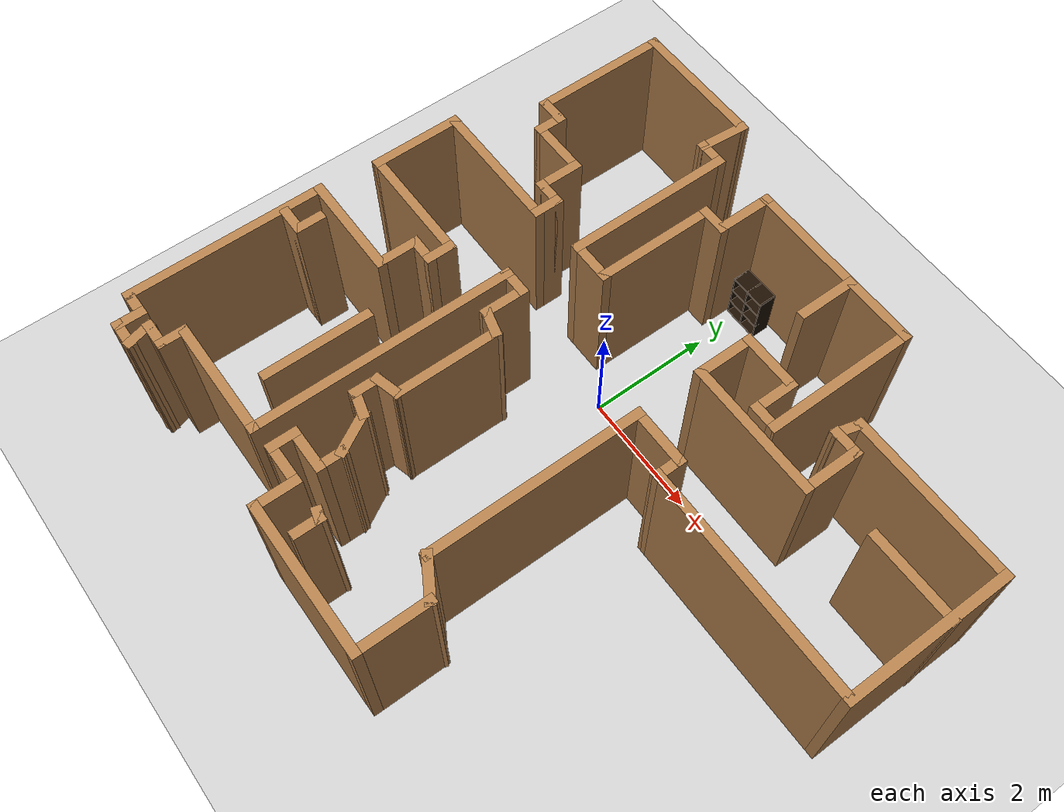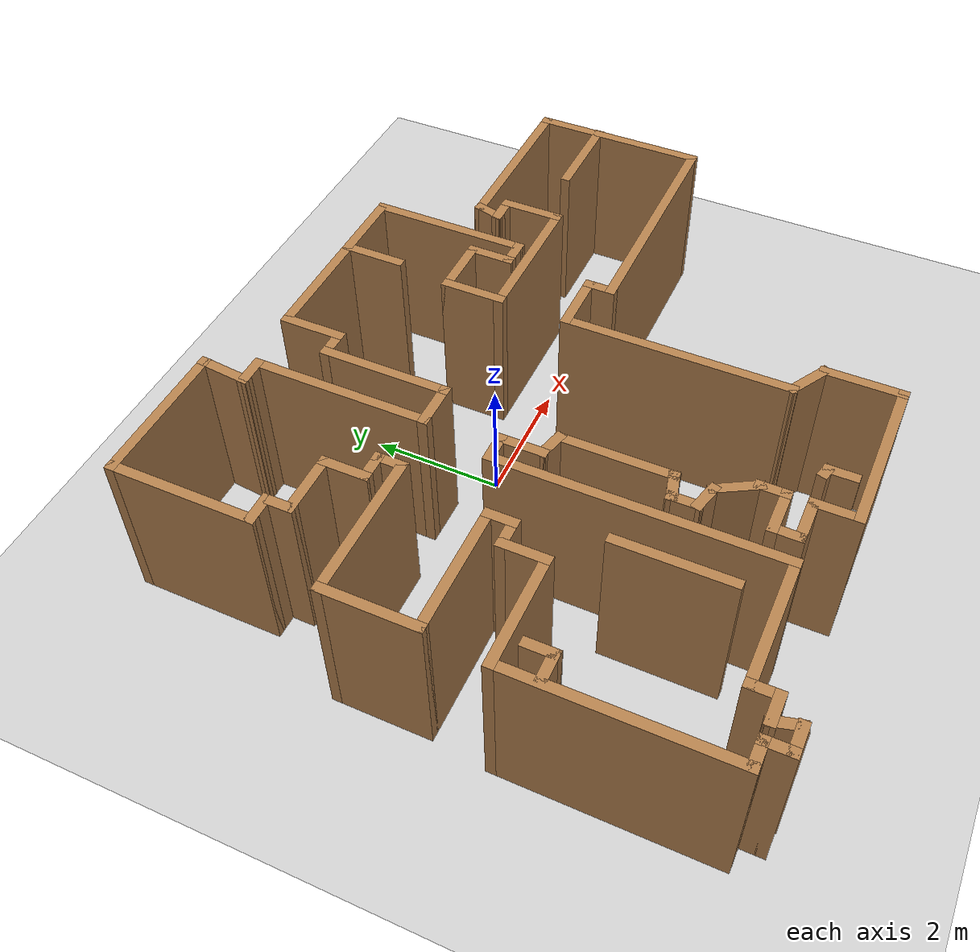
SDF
<sdf version="1.6">
 <world name="default">
  <light name="sun" type="directional">
   <pose>0 0 10 0 -0 0</pose>
   <diffuse>0.8 0.8 0.8 1</diffuse>
   <specular>0.2 0.2 0.2 1</specular>
   <attenuation>
    <range>1000</range>
    <constant>0.9</constant>
    <linear>0.01</linear>
    <quadratic>0.001</quadratic>
   </attenuation>
   <direction>-0.5 0.1 -0.9</direction>
  </light>
  <model name="ground_plane">
   <static>1</static>
   <link name="link">
    <collision name="collision">
     <geometry><plane><normal>0 0 1</normal><size>100 100</size></plane></geometry>
     <surface>
      <contact><collide_bitmask>65535</collide_bitmask></contact>
      <friction><ode><mu>100</mu><mu2>50</mu2></ode></friction>
     </surface>
    </collision>
    <visual name="visual">
     <cast_shadows>0</cast_shadows>
     <geometry><plane><normal>0 0 1</normal><size>100 100</size></plane></geometry>
     <material>
      <script><uri>file://media/materials/scripts/gazebo.material</uri><name>Gazebo/Grey</name></script>
     </material>
    </visual>
   </link>
  </model>
  <gravity>0 0 -9.8</gravity>
  <magnetic_field>6e-06 2.3e-05 -4.2e-05</magnetic_field>
  <atmosphere type="adiabatic"/>
  <physics name="default_physics" default="0" type="ode">
   <max_step_size>0.001</max_step_size>
   <real_time_factor>1</real_time_factor>
   <real_time_update_rate>1000</real_time_update_rate>
  </physics>
  <scene><ambient>0.4 0.4 0.4 1</ambient><background>0.7 0.7 0.7 1</background><shadows>1</shadows></scene>
  <audio><device>default</device></audio>
  <spherical_coordinates>
   <surface_model>EARTH_WGS84</surface_model>
   <latitude_deg>0</latitude_deg>
   <longitude_deg>0</longitude_deg>
   <elevation>0</elevation>
   <heading_deg>0</heading_deg>
  </spherical_coordinates>
  <model name="map_36">
   <pose>0.77291 -0.83712 0 0 -0 0</pose>
   <link name="Wall_0">
    <collision name="Wall_0_Collision">
     <geometry><box><size>2.25 0.15 2.5</size></box></geometry>
     <pose>0 0 1.25 0 -0 0</pose>
    </collision>
    <visual name="Wall_0_Visual">
     <pose>0 0 1.25 0 -0 0</pose>
     <geometry><box><size>2.25 0.15 2.5</size></box></geometry>
     <material>
      <script><uri>file://media/materials/scripts/gazebo.material</uri><name>Gazebo/Wood</name></script>
      <ambient>1 1 1 1</ambient>
     </material>
     <meta><layer>0</layer></meta>
    </visual>
    <pose>-3.34541 4.58019 0 0 -0 3.14159</pose>
   </link>
   <link name="Wall_1">
    <collision name="Wall_1_Collision">
     <geometry><box><size>2.25 0.15 2.5</size></box></geometry>
     <pose>0 0 1.25 0 -0 0</pose>
    </collision>
    <visual name="Wall_1_Visual">
     <pose>0 0 1.25 0 -0 0</pose>
     <geometry><box><size>2.25 0.15 2.5</size></box></geometry>
     <material>
      <script><uri>file://media/materials/scripts/gazebo.material</uri><name>Gazebo/Wood</name></script>
      <ambient>1 1 1 1</ambient>
     </material>
     <meta><layer>0</layer></meta>
    </visual>
    <pose>-4.39541 3.53019 0 0 -0 -1.5708</pose>
   </link>
   <link name="Wall_100">
    <collision name="Wall_100_Collision">
     <geometry><box><size>0.5 0.15 2.5</size></box></geometry>
     <pose>0 0 1.25 0 -0 0</pose>
    </collision>
    <visual name="Wall_100_Visual">
     <pose>0 0 1.25 0 -0 0</pose>
     <geometry><box><size>0.5 0.15 2.5</size></box></geometry>
     <material>
      <script><uri>file://media/materials/scripts/gazebo.material</uri><name>Gazebo/Wood</name></script>
      <ambient>1 1 1 1</ambient>
     </material>
     <meta><layer>0</layer></meta>
    </visual>
    <pose>-0.62594 -4.0171 0 0 -0 -1.5708</pose>
   </link>
   <link name="Wall_17">
    <collision name="Wall_17_Collision">
     <geometry><box><size>1 0.15 2.5</size></box></geometry>
     <pose>0 0 1.25 0 -0 0</pose>
    </collision>
    <visual name="Wall_17_Visual">
     <pose>0 0 1.25 0 -0 0</pose>
     <geometry><box><size>1 0.15 2.5</size></box></geometry>
     <material>
      <script><uri>file://media/materials/scripts/gazebo.material</uri><name>Gazebo/Wood</name></script>
      <ambient>1 1 1 1</ambient>
     </material>
     <meta><layer>0</layer></meta>
    </visual>
    <pose>-3.62041 2.13019 0 0 -0 0</pose>
   </link>
   <link name="Wall_18">
    <collision name="Wall_18_Collision">
     <geometry><box><size>0.75 0.15 2.5</size></box></geometry>
     <pose>0 0 1.25 0 -0 0</pose>
    </collision>
    <visual name="Wall_18_Visual">
     <pose>0 0 1.25 0 -0 0</pose>
     <geometry><box><size>0.75 0.15 2.5</size></box></geometry>
     <material>
      <script><uri>file://media/materials/scripts/gazebo.material</uri><name>Gazebo/Wood</name></script>
      <ambient>1 1 1 1</ambient>
     </material>
     <meta><layer>0</layer></meta>
    </visual>
    <pose>-3.19541 1.83019 0 0 -0 -1.5708</pose>
   </link>
   <link name="Wall_19">
    <collision name="Wall_19_Collision">
     <geometry><box><size>0.5 0.15 2.5</size></box></geometry>
     <pose>0 0 1.25 0 -0 0</pose>
    </collision>
    <visual name="Wall_19_Visual">
     <pose>0 0 1.25 0 -0 0</pose>
     <geometry><box><size>0.5 0.15 2.5</size></box></geometry>
     <material>
      <script><uri>file://media/materials/scripts/gazebo.material</uri><name>Gazebo/Wood</name></script>
      <ambient>1 1 1 1</ambient>
     </material>
     <meta><layer>0</layer></meta>
    </visual>
    <pose>-3.02041 1.53019 0 0 -0 0</pose>
   </link>
   <link name="Wall_2">
    <collision name="Wall_2_Collision">
     <geometry><box><size>0.5 0.15 2.5</size></box></geometry>
     <pose>0 0 1.25 0 -0 0</pose>
    </collision>
    <visual name="Wall_2_Visual">
     <pose>0 0 1.25 0 -0 0</pose>
     <geometry><box><size>0.5 0.15 2.5</size></box></geometry>
     <material>
      <script><uri>file://media/materials/scripts/gazebo.material</uri><name>Gazebo/Wood</name></script>
      <ambient>1 1 1 1</ambient>
     </material>
     <meta><layer>0</layer></meta>
    </visual>
    <pose>-4.22041 2.48019 0 0 -0 0</pose>
   </link>
   <link name="Wall_20">
    <collision name="Wall_20_Collision">
     <geometry><box><size>0.5 0.15 2.5</size></box></geometry>
     <pose>0 0 1.25 0 -0 0</pose>
    </collision>
    <visual name="Wall_20_Visual">
     <pose>0 0 1.25 0 -0 0</pose>
     <geometry><box><size>0.5 0.15 2.5</size></box></geometry>
     <material>
      <script><uri>file://media/materials/scripts/gazebo.material</uri><name>Gazebo/Wood</name></script>
      <ambient>1 1 1 1</ambient>
     </material>
     <meta><layer>0</layer></meta>
    </visual>
    <pose>-2.84541 1.35519 0 0 -0 -1.5708</pose>
   </link>
   <link name="Wall_21">
    <collision name="Wall_21_Collision">
     <geometry><box><size>2.25 0.15 2.5</size></box></geometry>
     <pose>0 0 1.25 0 -0 0</pose>
    </collision>
    <visual name="Wall_21_Visual">
     <pose>0 0 1.25 0 -0 0</pose>
     <geometry><box><size>2.25 0.15 2.5</size></box></geometry>
     <material>
      <script><uri>file://media/materials/scripts/gazebo.material</uri><name>Gazebo/Wood</name></script>
      <ambient>1 1 1 1</ambient>
     </material>
     <meta><layer>0</layer></meta>
    </visual>
    <pose>-3.89541 1.18019 0 0 -0 3.14159</pose>
   </link>
   <link name="Wall_22">
    <collision name="Wall_22_Collision">
     <geometry><box><size>1.5 0.15 2.5</size></box></geometry>
     <pose>0 0 1.25 0 -0 0</pose>
    </collision>
    <visual name="Wall_22_Visual">
     <pose>0 0 1.25 0 -0 0</pose>
     <geometry><box><size>1.5 0.15 2.5</size></box></geometry>
     <material>
      <script><uri>file://media/materials/scripts/gazebo.material</uri><name>Gazebo/Wood</name></script>
      <ambient>1 1 1 1</ambient>
     </material>
     <meta><layer>0</layer></meta>
    </visual>
    <pose>-4.94541 0.505193 0 0 -0 -1.5708</pose>
   </link>
   <link name="Wall_23">
    <collision name="Wall_23_Collision">
     <geometry><box><size>2 0.15 2.5</size></box></geometry>
     <pose>0 0 1.25 0 -0 0</pose>
    </collision>
    <visual name="Wall_23_Visual">
     <pose>0 0 1.25 0 -0 0</pose>
     <geometry><box><size>2 0.15 2.5</size></box></geometry>
     <material>
      <script><uri>file://media/materials/scripts/gazebo.material</uri><name>Gazebo/Wood</name></script>
      <ambient>1 1 1 1</ambient>
     </material>
     <meta><layer>0</layer></meta>
    </visual>
    <pose>-4.02041 -0.169807 0 0 -0 0</pose>
   </link>
   <link name="Wall_26">
    <collision name="Wall_26_Collision">
     <geometry><box><size>0.5 0.15 2.5</size></box></geometry>
     <pose>0 0 1.25 0 -0 0</pose>
    </collision>
    <visual name="Wall_26_Visual">
     <pose>0 0 1.25 0 -0 0</pose>
     <geometry><box><size>0.5 0.15 2.5</size></box></geometry>
     <material>
      <script><uri>file://media/materials/scripts/gazebo.material</uri><name>Gazebo/Wood</name></script>
      <ambient>1 1 1 1</ambient>
     </material>
     <meta><layer>0</layer></meta>
    </visual>
    <pose>-3.09541 -0.344807 0 0 -0 -1.5708</pose>
   </link>
   <link name="Wall_27">
    <collision name="Wall_27_Collision">
     <geometry><box><size>0.5 0.15 2.5</size></box></geometry>
     <pose>0 0 1.25 0 -0 0</pose>
    </collision>
    <visual name="Wall_27_Visual">
     <pose>0 0 1.25 0 -0 0</pose>
     <geometry><box><size>0.5 0.15 2.5</size></box></geometry>
     <material>
      <script><uri>file://media/materials/scripts/gazebo.material</uri><name>Gazebo/Wood</name></script>
      <ambient>1 1 1 1</ambient>
     </material>
     <meta><layer>0</layer></meta>
    </visual>
    <pose>-3.27041 -0.519807 0 0 -0 3.14159</pose>
   </link>
   <link name="Wall_28">
    <collision name="Wall_28_Collision">
     <geometry><box><size>0.75 0.15 2.5</size></box></geometry>
     <pose>0 0 1.25 0 -0 0</pose>
    </collision>
    <visual name="Wall_28_Visual">
     <pose>0 0 1.25 0 -0 0</pose>
     <geometry><box><size>0.75 0.15 2.5</size></box></geometry>
     <material>
      <script><uri>file://media/materials/scripts/gazebo.material</uri><name>Gazebo/Wood</name></script>
      <ambient>1 1 1 1</ambient>
     </material>
     <meta><layer>0</layer></meta>
    </visual>
    <pose>-3.44541 -0.819807 0 0 -0 -1.5708</pose>
   </link>
   <link name="Wall_29">
    <collision name="Wall_29_Collision">
     <geometry><box><size>1.75 0.15 2.5</size></box></geometry>
     <pose>0 0 1.25 0 -0 0</pose>
    </collision>
    <visual name="Wall_29_Visual">
     <pose>0 0 1.25 0 -0 0</pose>
     <geometry><box><size>1.75 0.15 2.5</size></box></geometry>
     <material>
      <script><uri>file://media/materials/scripts/gazebo.material</uri><name>Gazebo/Wood</name></script>
      <ambient>1 1 1 1</ambient>
     </material>
     <meta><layer>0</layer></meta>
    </visual>
    <pose>-4.24541 -1.11981 0 0 -0 3.14159</pose>
   </link>
   <link name="Wall_3">
    <collision name="Wall_3_Collision">
     <geometry><box><size>0.5 0.15 2.5</size></box></geometry>
     <pose>0 0 1.25 0 -0 0</pose>
    </collision>
    <visual name="Wall_3_Visual">
     <pose>0 0 1.25 0 -0 0</pose>
     <geometry><box><size>0.5 0.15 2.5</size></box></geometry>
     <material>
      <script><uri>file://media/materials/scripts/gazebo.material</uri><name>Gazebo/Wood</name></script>
      <ambient>1 1 1 1</ambient>
     </material>
     <meta><layer>0</layer></meta>
    </visual>
    <pose>-4.04541 2.30519 0 0 -0 -1.5708</pose>
   </link>
   <link name="Wall_30">
    <collision name="Wall_30_Collision">
     <geometry><box><size>3.25 0.15 2.5</size></box></geometry>
     <pose>0 0 1.25 0 -0 0</pose>
    </collision>
    <visual name="Wall_30_Visual">
     <pose>0 0 1.25 0 -0 0</pose>
     <geometry><box><size>3.25 0.15 2.5</size></box></geometry>
     <material>
      <script><uri>file://media/materials/scripts/gazebo.material</uri><name>Gazebo/Wood</name></script>
      <ambient>1 1 1 1</ambient>
     </material>
     <meta><layer>0</layer></meta>
    </visual>
    <pose>-5.04541 -2.66981 0 0 -0 -1.5708</pose>
   </link>
   <link name="Wall_31">
    <collision name="Wall_31_Collision">
     <geometry><box><size>0.5 0.15 2.5</size></box></geometry>
     <pose>0 0 1.25 0 -0 0</pose>
    </collision>
    <visual name="Wall_31_Visual">
     <pose>0 0 1.25 0 -0 0</pose>
     <geometry><box><size>0.5 0.15 2.5</size></box></geometry>
     <material>
      <script><uri>file://media/materials/scripts/gazebo.material</uri><name>Gazebo/Wood</name></script>
      <ambient>1 1 1 1</ambient>
     </material>
     <meta><layer>0</layer></meta>
    </visual>
    <pose>-4.87041 -4.21981 0 0 -0 0</pose>
   </link>
   <link name="Wall_35">
    <collision name="Wall_35_Collision">
     <geometry><box><size>0.5 0.15 2.5</size></box></geometry>
     <pose>0 0 1.25 0 -0 0</pose>
    </collision>
    <visual name="Wall_35_Visual">
     <pose>0 0 1.25 0 -0 0</pose>
     <geometry><box><size>0.5 0.15 2.5</size></box></geometry>
     <material>
      <script><uri>file://media/materials/scripts/gazebo.material</uri><name>Gazebo/Wood</name></script>
      <ambient>1 1 1 1</ambient>
     </material>
     <meta><layer>0</layer></meta>
    </visual>
    <pose>-4.69541 -4.39481 0 0 -0 -1.5708</pose>
   </link>
   <link name="Wall_36">
    <collision name="Wall_36_Collision">
     <geometry><box><size>0.5 0.15 2.5</size></box></geometry>
     <pose>0 0 1.25 0 -0 0</pose>
    </collision>
    <visual name="Wall_36_Visual">
     <pose>0 0 1.25 0 -0 0</pose>
     <geometry><box><size>0.5 0.15 2.5</size></box></geometry>
     <material>
      <script><uri>file://media/materials/scripts/gazebo.material</uri><name>Gazebo/Wood</name></script>
      <ambient>1 1 1 1</ambient>
     </material>
     <meta><layer>0</layer></meta>
    </visual>
    <pose>-4.52041 -4.56981 0 0 -0 0</pose>
   </link>
   <link name="Wall_37">
    <collision name="Wall_37_Collision">
     <geometry><box><size>0.5 0.15 2.5</size></box></geometry>
     <pose>0 0 1.25 0 -0 0</pose>
    </collision>
    <visual name="Wall_37_Visual">
     <pose>0 0 1.25 0 -0 0</pose>
     <geometry><box><size>0.5 0.15 2.5</size></box></geometry>
     <material>
      <script><uri>file://media/materials/scripts/gazebo.material</uri><name>Gazebo/Wood</name></script>
      <ambient>1 1 1 1</ambient>
     </material>
     <meta><layer>0</layer></meta>
    </visual>
    <pose>-4.39071 -4.40077 0 0 -0 1.8326</pose>
   </link>
   <link name="Wall_38">
    <collision name="Wall_38_Collision">
     <geometry><box><size>0.5 0.15 2.5</size></box></geometry>
     <pose>0 0 1.25 0 -0 0</pose>
    </collision>
    <visual name="Wall_38_Visual">
     <pose>0 0 1.25 0 -0 0</pose>
     <geometry><box><size>0.5 0.15 2.5</size></box></geometry>
     <material>
      <script><uri>file://media/materials/scripts/gazebo.material</uri><name>Gazebo/Wood</name></script>
      <ambient>1 1 1 1</ambient>
     </material>
     <meta><layer>0</layer></meta>
    </visual>
    <pose>-4.261 -4.23173 0 0 -0 0</pose>
   </link>
   <link name="Wall_39">
    <collision name="Wall_39_Collision">
     <geometry><box><size>0.5 0.15 2.5</size></box></geometry>
     <pose>0 0 1.25 0 -0 0</pose>
    </collision>
    <visual name="Wall_39_Visual">
     <pose>0 0 1.25 0 -0 0</pose>
     <geometry><box><size>0.5 0.15 2.5</size></box></geometry>
     <material>
      <script><uri>file://media/materials/scripts/gazebo.material</uri><name>Gazebo/Wood</name></script>
      <ambient>1 1 1 1</ambient>
     </material>
     <meta><layer>0</layer></meta>
    </visual>
    <pose>-4.086 -4.05673 0 0 -0 1.5708</pose>
   </link>
   <link name="Wall_40">
    <collision name="Wall_40_Collision">
     <geometry><box><size>2 0.15 2.5</size></box></geometry>
     <pose>0 0 1.25 0 -0 0</pose>
    </collision>
    <visual name="Wall_40_Visual">
     <pose>0 0 1.25 0 -0 0</pose>
     <geometry><box><size>2 0.15 2.5</size></box></geometry>
     <material>
      <script><uri>file://media/materials/scripts/gazebo.material</uri><name>Gazebo/Wood</name></script>
      <ambient>1 1 1 1</ambient>
     </material>
     <meta><layer>0</layer></meta>
    </visual>
    <pose>-3.161 -3.88173 0 0 -0 0</pose>
   </link>
   <link name="Wall_41">
    <collision name="Wall_41_Collision">
     <geometry><box><size>4.25 0.15 2.5</size></box></geometry>
     <pose>0 0 1.25 0 -0 0</pose>
    </collision>
    <visual name="Wall_41_Visual">
     <pose>0 0 1.25 0 -0 0</pose>
     <geometry><box><size>4.25 0.15 2.5</size></box></geometry>
     <material>
      <script><uri>file://media/materials/scripts/gazebo.material</uri><name>Gazebo/Wood</name></script>
      <ambient>1 1 1 1</ambient>
     </material>
     <meta><layer>0</layer></meta>
    </visual>
    <pose>-2.236 -1.83173 0 0 -0 1.5708</pose>
   </link>
   <link name="Wall_42">
    <collision name="Wall_42_Collision">
     <geometry><box><size>0.5 0.15 2.5</size></box></geometry>
     <pose>0 0 1.25 0 -0 0</pose>
    </collision>
    <visual name="Wall_42_Visual">
     <pose>0 0 1.25 0 -0 0</pose>
     <geometry><box><size>0.5 0.15 2.5</size></box></geometry>
     <material>
      <script><uri>file://media/materials/scripts/gazebo.material</uri><name>Gazebo/Wood</name></script>
      <ambient>1 1 1 1</ambient>
     </material>
     <meta><layer>0</layer></meta>
    </visual>
    <pose>-2.061 0.218267 0 0 -0 0</pose>
   </link>
   <link name="Wall_43">
    <collision name="Wall_43_Collision">
     <geometry><box><size>0.75 0.15 2.5</size></box></geometry>
     <pose>0 0 1.25 0 -0 0</pose>
    </collision>
    <visual name="Wall_43_Visual">
     <pose>0 0 1.25 0 -0 0</pose>
     <geometry><box><size>0.75 0.15 2.5</size></box></geometry>
     <material>
      <script><uri>file://media/materials/scripts/gazebo.material</uri><name>Gazebo/Wood</name></script>
      <ambient>1 1 1 1</ambient>
     </material>
     <meta><layer>0</layer></meta>
    </visual>
    <pose>-1.886 -0.081733 0 0 -0 -1.5708</pose>
   </link>
   <link name="Wall_44">
    <collision name="Wall_44_Collision">
     <geometry><box><size>0.5 0.15 2.5</size></box></geometry>
     <pose>0 0 1.25 0 -0 0</pose>
    </collision>
    <visual name="Wall_44_Visual">
     <pose>0 0 1.25 0 -0 0</pose>
     <geometry><box><size>0.5 0.15 2.5</size></box></geometry>
     <material>
      <script><uri>file://media/materials/scripts/gazebo.material</uri><name>Gazebo/Wood</name></script>
      <ambient>1 1 1 1</ambient>
     </material>
     <meta><layer>0</layer></meta>
    </visual>
    <pose>-1.71696 -0.427026 0 0 -0 -0.261799</pose>
   </link>
   <link name="Wall_45">
    <collision name="Wall_45_Collision">
     <geometry><box><size>1.75 0.15 2.5</size></box></geometry>
     <pose>0 0 1.25 0 -0 0</pose>
    </collision>
    <visual name="Wall_45_Visual">
     <pose>0 0 1.25 0 -0 0</pose>
     <geometry><box><size>1.75 0.15 2.5</size></box></geometry>
     <material>
      <script><uri>file://media/materials/scripts/gazebo.material</uri><name>Gazebo/Wood</name></script>
      <ambient>1 1 1 1</ambient>
     </material>
     <meta><layer>0</layer></meta>
    </visual>
    <pose>-1.54793 -1.27232 0 0 -0 -1.5708</pose>
   </link>
   <link name="Wall_46">
    <collision name="Wall_46_Collision">
     <geometry><box><size>0.5 0.15 2.5</size></box></geometry>
     <pose>0 0 1.25 0 -0 0</pose>
    </collision>
    <visual name="Wall_46_Visual">
     <pose>0 0 1.25 0 -0 0</pose>
     <geometry><box><size>0.5 0.15 2.5</size></box></geometry>
     <material>
      <script><uri>file://media/materials/scripts/gazebo.material</uri><name>Gazebo/Wood</name></script>
      <ambient>1 1 1 1</ambient>
     </material>
     <meta><layer>0</layer></meta>
    </visual>
    <pose>-1.71696 -2.11761 0 0 -0 -2.87979</pose>
   </link>
   <link name="Wall_47">
    <collision name="Wall_47_Collision">
     <geometry><box><size>0.5 0.15 2.5</size></box></geometry>
     <pose>0 0 1.25 0 -0 0</pose>
    </collision>
    <visual name="Wall_47_Visual">
     <pose>0 0 1.25 0 -0 0</pose>
     <geometry><box><size>0.5 0.15 2.5</size></box></geometry>
     <material>
      <script><uri>file://media/materials/scripts/gazebo.material</uri><name>Gazebo/Wood</name></script>
      <ambient>1 1 1 1</ambient>
     </material>
     <meta><layer>0</layer></meta>
    </visual>
    <pose>-1.886 -2.33791 0 0 -0 -1.5708</pose>
   </link>
   <link name="Wall_48">
    <collision name="Wall_48_Collision">
     <geometry><box><size>0.5 0.15 2.5</size></box></geometry>
     <pose>0 0 1.25 0 -0 0</pose>
    </collision>
    <visual name="Wall_48_Visual">
     <pose>0 0 1.25 0 -0 0</pose>
     <geometry><box><size>0.5 0.15 2.5</size></box></geometry>
     <material>
      <script><uri>file://media/materials/scripts/gazebo.material</uri><name>Gazebo/Wood</name></script>
      <ambient>1 1 1 1</ambient>
     </material>
     <meta><layer>0</layer></meta>
    </visual>
    <pose>-1.71696 -2.5582 0 0 -0 -0.261799</pose>
   </link>
   <link name="Wall_49">
    <collision name="Wall_49_Collision">
     <geometry><box><size>0.75 0.15 2.5</size></box></geometry>
     <pose>0 0 1.25 0 -0 0</pose>
    </collision>
    <visual name="Wall_49_Visual">
     <pose>0 0 1.25 0 -0 0</pose>
     <geometry><box><size>0.75 0.15 2.5</size></box></geometry>
     <material>
      <script><uri>file://media/materials/scripts/gazebo.material</uri><name>Gazebo/Wood</name></script>
      <ambient>1 1 1 1</ambient>
     </material>
     <meta><layer>0</layer></meta>
    </visual>
    <pose>-1.39793 -2.8633 0 0 -0 -1.0472</pose>
   </link>
   <link name="Wall_50">
    <collision name="Wall_50_Collision">
     <geometry><box><size>0.5 0.15 2.5</size></box></geometry>
     <pose>0 0 1.25 0 -0 0</pose>
    </collision>
    <visual name="Wall_50_Visual">
     <pose>0 0 1.25 0 -0 0</pose>
     <geometry><box><size>0.5 0.15 2.5</size></box></geometry>
     <material>
      <script><uri>file://media/materials/scripts/gazebo.material</uri><name>Gazebo/Wood</name></script>
      <ambient>1 1 1 1</ambient>
     </material>
     <meta><layer>0</layer></meta>
    </visual>
    <pose>-1.24793 -3.29811 0 0 -0 -1.5708</pose>
   </link>
   <link name="Wall_51">
    <collision name="Wall_51_Collision">
     <geometry><box><size>0.75 0.15 2.5</size></box></geometry>
     <pose>0 0 1.25 0 -0 0</pose>
    </collision>
    <visual name="Wall_51_Visual">
     <pose>0 0 1.25 0 -0 0</pose>
     <geometry><box><size>0.75 0.15 2.5</size></box></geometry>
     <material>
      <script><uri>file://media/materials/scripts/gazebo.material</uri><name>Gazebo/Wood</name></script>
      <ambient>1 1 1 1</ambient>
     </material>
     <meta><layer>0</layer></meta>
    </visual>
    <pose>-1.54793 -3.47311 0 0 -0 3.14159</pose>
   </link>
   <link name="Wall_52">
    <collision name="Wall_52_Collision">
     <geometry><box><size>0.5 0.15 2.5</size></box></geometry>
     <pose>0 0 1.25 0 -0 0</pose>
    </collision>
    <visual name="Wall_52_Visual">
     <pose>0 0 1.25 0 -0 0</pose>
     <geometry><box><size>0.5 0.15 2.5</size></box></geometry>
     <material>
      <script><uri>file://media/materials/scripts/gazebo.material</uri><name>Gazebo/Wood</name></script>
      <ambient>1 1 1 1</ambient>
     </material>
     <meta><layer>0</layer></meta>
    </visual>
    <pose>-1.84793 -3.64811 0 0 -0 -1.5708</pose>
   </link>
   <link name="Wall_53">
    <collision name="Wall_53_Collision">
     <geometry><box><size>0.75 0.15 2.5</size></box></geometry>
     <pose>0 0 1.25 0 -0 0</pose>
    </collision>
    <visual name="Wall_53_Visual">
     <pose>0 0 1.25 0 -0 0</pose>
     <geometry><box><size>0.75 0.15 2.5</size></box></geometry>
     <material>
      <script><uri>file://media/materials/scripts/gazebo.material</uri><name>Gazebo/Wood</name></script>
      <ambient>1 1 1 1</ambient>
     </material>
     <meta><layer>0</layer></meta>
    </visual>
    <pose>-1.54793 -3.82311 0 0 -0 0</pose>
   </link>
   <link name="Wall_54">
    <collision name="Wall_54_Collision">
     <geometry><box><size>0.75 0.15 2.5</size></box></geometry>
     <pose>0 0 1.25 0 -0 0</pose>
    </collision>
    <visual name="Wall_54_Visual">
     <pose>0 0 1.25 0 -0 0</pose>
     <geometry><box><size>0.75 0.15 2.5</size></box></geometry>
     <material>
      <script><uri>file://media/materials/scripts/gazebo.material</uri><name>Gazebo/Wood</name></script>
      <ambient>1 1 1 1</ambient>
     </material>
     <meta><layer>0</layer></meta>
    </visual>
    <pose>-1.24793 -4.12311 0 0 -0 -1.5708</pose>
   </link>
   <link name="Wall_57">
    <collision name="Wall_57_Collision">
     <geometry><box><size>2.5 0.15 2.5</size></box></geometry>
     <pose>0 0 1.25 0 -0 0</pose>
    </collision>
    <visual name="Wall_57_Visual">
     <pose>0 0 1.25 0 -0 0</pose>
     <geometry><box><size>2.5 0.15 2.5</size></box></geometry>
     <material>
      <script><uri>file://media/materials/scripts/gazebo.material</uri><name>Gazebo/Wood</name></script>
      <ambient>1 1 1 1</ambient>
     </material>
     <meta><layer>0</layer></meta>
    </visual>
    <pose>-0.072926 -4.42311 0 0 -0 0</pose>
   </link>
   <link name="Wall_58">
    <collision name="Wall_58_Collision">
     <geometry><box><size>1.25 0.15 2.5</size></box></geometry>
     <pose>0 0 1.25 0 -0 0</pose>
    </collision>
    <visual name="Wall_58_Visual">
     <pose>0 0 1.25 0 -0 0</pose>
     <geometry><box><size>1.25 0.15 2.5</size></box></geometry>
     <material>
      <script><uri>file://media/materials/scripts/gazebo.material</uri><name>Gazebo/Wood</name></script>
      <ambient>1 1 1 1</ambient>
     </material>
     <meta><layer>0</layer></meta>
    </visual>
    <pose>1.10207 -3.87311 0 0 -0 1.5708</pose>
   </link>
   <link name="Wall_59">
    <collision name="Wall_59_Collision">
     <geometry><box><size>0.75 0.15 2.5</size></box></geometry>
     <pose>0 0 1.25 0 -0 0</pose>
    </collision>
    <visual name="Wall_59_Visual">
     <pose>0 0 1.25 0 -0 0</pose>
     <geometry><box><size>0.75 0.15 2.5</size></box></geometry>
     <material>
      <script><uri>file://media/materials/scripts/gazebo.material</uri><name>Gazebo/Wood</name></script>
      <ambient>1 1 1 1</ambient>
     </material>
     <meta><layer>0</layer></meta>
    </visual>
    <pose>0.842266 -3.17311 0 0 -0 2.61799</pose>
   </link>
   <link name="Wall_60">
    <collision name="Wall_60_Collision">
     <geometry><box><size>3.5 0.15 2.5</size></box></geometry>
     <pose>0 0 1.25 0 -0 0</pose>
    </collision>
    <visual name="Wall_60_Visual">
     <pose>0 0 1.25 0 -0 0</pose>
     <geometry><box><size>3.5 0.15 2.5</size></box></geometry>
     <material>
      <script><uri>file://media/materials/scripts/gazebo.material</uri><name>Gazebo/Wood</name></script>
      <ambient>1 1 1 1</ambient>
     </material>
     <meta><layer>0</layer></meta>
    </visual>
    <pose>0.582459 -1.34811 0 0 -0 1.5708</pose>
   </link>
   <link name="Wall_65">
    <collision name="Wall_65_Collision">
     <geometry><box><size>1 0.15 2.5</size></box></geometry>
     <pose>0 0 1.25 0 -0 0</pose>
    </collision>
    <visual name="Wall_65_Visual">
     <pose>0 0 1.25 0 -0 0</pose>
     <geometry><box><size>1 0.15 2.5</size></box></geometry>
     <material>
      <script><uri>file://media/materials/scripts/gazebo.material</uri><name>Gazebo/Wood</name></script>
      <ambient>1 1 1 1</ambient>
     </material>
     <meta><layer>0</layer></meta>
    </visual>
    <pose>1.00746 0.326892 0 0 -0 0</pose>
   </link>
   <link name="Wall_66">
    <collision name="Wall_66_Collision">
     <geometry><box><size>0.5 0.15 2.5</size></box></geometry>
     <pose>0 0 1.25 0 -0 0</pose>
    </collision>
    <visual name="Wall_66_Visual">
     <pose>0 0 1.25 0 -0 0</pose>
     <geometry><box><size>0.5 0.15 2.5</size></box></geometry>
     <material>
      <script><uri>file://media/materials/scripts/gazebo.material</uri><name>Gazebo/Wood</name></script>
      <ambient>1 1 1 1</ambient>
     </material>
     <meta><layer>0</layer></meta>
    </visual>
    <pose>1.43246 0.151892 0 0 -0 -1.5708</pose>
   </link>
   <link name="Wall_67">
    <collision name="Wall_67_Collision">
     <geometry><box><size>3.75 0.15 2.5</size></box></geometry>
     <pose>0 0 1.25 0 -0 0</pose>
    </collision>
    <visual name="Wall_67_Visual">
     <pose>0 0 1.25 0 -0 0</pose>
     <geometry><box><size>3.75 0.15 2.5</size></box></geometry>
     <material>
      <script><uri>file://media/materials/scripts/gazebo.material</uri><name>Gazebo/Wood</name></script>
      <ambient>1 1 1 1</ambient>
     </material>
     <meta><layer>0</layer></meta>
    </visual>
    <pose>3.23246 -0.023108 0 0 -0 0</pose>
   </link>
   <link name="Wall_68">
    <collision name="Wall_68_Collision">
     <geometry><box><size>2.75 0.15 2.5</size></box></geometry>
     <pose>0 0 1.25 0 -0 0</pose>
    </collision>
    <visual name="Wall_68_Visual">
     <pose>0 0 1.25 0 -0 0</pose>
     <geometry><box><size>2.75 0.15 2.5</size></box></geometry>
     <material>
      <script><uri>file://media/materials/scripts/gazebo.material</uri><name>Gazebo/Wood</name></script>
      <ambient>1 1 1 1</ambient>
     </material>
     <meta><layer>0</layer></meta>
    </visual>
    <pose>5.03246 1.27689 0 0 -0 1.5708</pose>
   </link>
   <link name="Wall_69">
    <collision name="Wall_69_Collision">
     <geometry><box><size>2.75 0.15 2.5</size></box></geometry>
     <pose>0 0 1.25 0 -0 0</pose>
    </collision>
    <visual name="Wall_69_Visual">
     <pose>0 0 1.25 0 -0 0</pose>
     <geometry><box><size>2.75 0.15 2.5</size></box></geometry>
     <material>
      <script><uri>file://media/materials/scripts/gazebo.material</uri><name>Gazebo/Wood</name></script>
      <ambient>1 1 1 1</ambient>
     </material>
     <meta><layer>0</layer></meta>
    </visual>
    <pose>3.73246 2.57689 0 0 -0 3.14159</pose>
   </link>
   <link name="Wall_70">
    <collision name="Wall_70_Collision">
     <geometry><box><size>0.5 0.15 2.5</size></box></geometry>
     <pose>0 0 1.25 0 -0 0</pose>
    </collision>
    <visual name="Wall_70_Visual">
     <pose>0 0 1.25 0 -0 0</pose>
     <geometry><box><size>0.5 0.15 2.5</size></box></geometry>
     <material>
      <script><uri>file://media/materials/scripts/gazebo.material</uri><name>Gazebo/Wood</name></script>
      <ambient>1 1 1 1</ambient>
     </material>
     <meta><layer>0</layer></meta>
    </visual>
    <pose>2.38716 2.40786 0 0 -0 -1.8326</pose>
   </link>
   <link name="Wall_71">
    <collision name="Wall_71_Collision">
     <geometry><box><size>0.5 0.15 2.5</size></box></geometry>
     <pose>0 0 1.25 0 -0 0</pose>
    </collision>
    <visual name="Wall_71_Visual">
     <pose>0 0 1.25 0 -0 0</pose>
     <geometry><box><size>0.5 0.15 2.5</size></box></geometry>
     <material>
      <script><uri>file://media/materials/scripts/gazebo.material</uri><name>Gazebo/Wood</name></script>
      <ambient>1 1 1 1</ambient>
     </material>
     <meta><layer>0</layer></meta>
    </visual>
    <pose>2.51687 2.23882 0 0 -0 0</pose>
   </link>
   <link name="Wall_72">
    <collision name="Wall_72_Collision">
     <geometry><box><size>1 0.15 2.5</size></box></geometry>
     <pose>0 0 1.25 0 -0 0</pose>
    </collision>
    <visual name="Wall_72_Visual">
     <pose>0 0 1.25 0 -0 0</pose>
     <geometry><box><size>1 0.15 2.5</size></box></geometry>
     <material>
      <script><uri>file://media/materials/scripts/gazebo.material</uri><name>Gazebo/Wood</name></script>
      <ambient>1 1 1 1</ambient>
     </material>
     <meta><layer>0</layer></meta>
    </visual>
    <pose>2.69187 1.81382 0 0 -0 -1.5708</pose>
   </link>
   <link name="Wall_73">
    <collision name="Wall_73_Collision">
     <geometry><box><size>2.25 0.15 2.5</size></box></geometry>
     <pose>0 0 1.25 0 -0 0</pose>
    </collision>
    <visual name="Wall_73_Visual">
     <pose>0 0 1.25 0 -0 0</pose>
     <geometry><box><size>2.25 0.15 2.5</size></box></geometry>
     <material>
      <script><uri>file://media/materials/scripts/gazebo.material</uri><name>Gazebo/Wood</name></script>
      <ambient>1 1 1 1</ambient>
     </material>
     <meta><layer>0</layer></meta>
    </visual>
    <pose>1.64187 1.38882 0 0 -0 3.14159</pose>
   </link>
   <link name="Wall_74">
    <collision name="Wall_74_Collision">
     <geometry><box><size>1 0.15 2.5</size></box></geometry>
     <pose>0 0 1.25 0 -0 0</pose>
    </collision>
    <visual name="Wall_74_Visual">
     <pose>0 0 1.25 0 -0 0</pose>
     <geometry><box><size>1 0.15 2.5</size></box></geometry>
     <material>
      <script><uri>file://media/materials/scripts/gazebo.material</uri><name>Gazebo/Wood</name></script>
      <ambient>1 1 1 1</ambient>
     </material>
     <meta><layer>0</layer></meta>
    </visual>
    <pose>0.591872 1.81382 0 0 -0 1.5708</pose>
   </link>
   <link name="Wall_75">
    <collision name="Wall_75_Collision">
     <geometry><box><size>1 0.15 2.5</size></box></geometry>
     <pose>0 0 1.25 0 -0 0</pose>
    </collision>
    <visual name="Wall_75_Visual">
     <pose>0 0 1.25 0 -0 0</pose>
     <geometry><box><size>1 0.15 2.5</size></box></geometry>
     <material>
      <script><uri>file://media/materials/scripts/gazebo.material</uri><name>Gazebo/Wood</name></script>
      <ambient>1 1 1 1</ambient>
     </material>
     <meta><layer>0</layer></meta>
    </visual>
    <pose>1.01687 2.23882 0 0 -0 0</pose>
   </link>
   <link name="Wall_76">
    <collision name="Wall_76_Collision">
     <geometry><box><size>0.75 0.15 2.5</size></box></geometry>
     <pose>0 0 1.25 0 -0 0</pose>
    </collision>
    <visual name="Wall_76_Visual">
     <pose>0 0 1.25 0 -0 0</pose>
     <geometry><box><size>0.75 0.15 2.5</size></box></geometry>
     <material>
      <script><uri>file://media/materials/scripts/gazebo.material</uri><name>Gazebo/Wood</name></script>
      <ambient>1 1 1 1</ambient>
     </material>
     <meta><layer>0</layer></meta>
    </visual>
    <pose>1.44187 1.93882 0 0 -0 -1.5708</pose>
   </link>
   <link name="Wall_77">
    <collision name="Wall_77_Collision">
     <geometry><box><size>0.5 0.15 2.5</size></box></geometry>
     <pose>0 0 1.25 0 -0 0</pose>
    </collision>
    <visual name="Wall_77_Visual">
     <pose>0 0 1.25 0 -0 0</pose>
     <geometry><box><size>0.5 0.15 2.5</size></box></geometry>
     <material>
      <script><uri>file://media/materials/scripts/gazebo.material</uri><name>Gazebo/Wood</name></script>
      <ambient>1 1 1 1</ambient>
     </material>
     <meta><layer>0</layer></meta>
    </visual>
    <pose>1.61687 1.63882 0 0 -0 0</pose>
   </link>
   <link name="Wall_78">
    <collision name="Wall_78_Collision">
     <geometry><box><size>2.5 0.15 2.5</size></box></geometry>
     <pose>0 0 1.25 0 -0 0</pose>
    </collision>
    <visual name="Wall_78_Visual">
     <pose>0 0 1.25 0 -0 0</pose>
     <geometry><box><size>2.5 0.15 2.5</size></box></geometry>
     <material>
      <script><uri>file://media/materials/scripts/gazebo.material</uri><name>Gazebo/Wood</name></script>
      <ambient>1 1 1 1</ambient>
     </material>
     <meta><layer>0</layer></meta>
    </visual>
    <pose>1.79187 2.81382 0 0 -0 1.5708</pose>
   </link>
   <link name="Wall_79">
    <collision name="Wall_79_Collision">
     <geometry><box><size>3 0.15 2.5</size></box></geometry>
     <pose>0 0 1.25 0 -0 0</pose>
    </collision>
    <visual name="Wall_79_Visual">
     <pose>0 0 1.25 0 -0 0</pose>
     <geometry><box><size>3 0.15 2.5</size></box></geometry>
     <material>
      <script><uri>file://media/materials/scripts/gazebo.material</uri><name>Gazebo/Wood</name></script>
      <ambient>1 1 1 1</ambient>
     </material>
     <meta><layer>0</layer></meta>
    </visual>
    <pose>0.366872 3.98882 0 0 -0 3.14159</pose>
   </link>
   <link name="Wall_80">
    <collision name="Wall_80_Collision">
     <geometry><box><size>1 0.15 2.5</size></box></geometry>
     <pose>0 0 1.25 0 -0 0</pose>
    </collision>
    <visual name="Wall_80_Visual">
     <pose>0 0 1.25 0 -0 0</pose>
     <geometry><box><size>1 0.15 2.5</size></box></geometry>
     <material>
      <script><uri>file://media/materials/scripts/gazebo.material</uri><name>Gazebo/Wood</name></script>
      <ambient>1 1 1 1</ambient>
     </material>
     <meta><layer>0</layer></meta>
    </visual>
    <pose>-1.05813 3.56382 0 0 -0 -1.5708</pose>
   </link>
   <link name="Wall_81">
    <collision name="Wall_81_Collision">
     <geometry><box><size>0.5 0.15 2.5</size></box></geometry>
     <pose>0 0 1.25 0 -0 0</pose>
    </collision>
    <visual name="Wall_81_Visual">
     <pose>0 0 1.25 0 -0 0</pose>
     <geometry><box><size>0.5 0.15 2.5</size></box></geometry>
     <material>
      <script><uri>file://media/materials/scripts/gazebo.material</uri><name>Gazebo/Wood</name></script>
      <ambient>1 1 1 1</ambient>
     </material>
     <meta><layer>0</layer></meta>
    </visual>
    <pose>-1.23313 3.13882 0 0 -0 3.14159</pose>
   </link>
   <link name="Wall_84">
    <collision name="Wall_84_Collision">
     <geometry><box><size>2 0.15 2.5</size></box></geometry>
     <pose>0 0 1.25 0 -0 0</pose>
    </collision>
    <visual name="Wall_84_Visual">
     <pose>0 0 1.25 0 -0 0</pose>
     <geometry><box><size>2 0.15 2.5</size></box></geometry>
     <material>
      <script><uri>file://media/materials/scripts/gazebo.material</uri><name>Gazebo/Wood</name></script>
      <ambient>1 1 1 1</ambient>
     </material>
     <meta><layer>0</layer></meta>
    </visual>
    <pose>-1.40813 2.21382 0 0 -0 -1.5708</pose>
   </link>
   <link name="Wall_85">
    <collision name="Wall_85_Collision">
     <geometry><box><size>0.75 0.15 2.5</size></box></geometry>
     <pose>0 0 1.25 0 -0 0</pose>
    </collision>
    <visual name="Wall_85_Visual">
     <pose>0 0 1.25 0 -0 0</pose>
     <geometry><box><size>0.75 0.15 2.5</size></box></geometry>
     <material>
      <script><uri>file://media/materials/scripts/gazebo.material</uri><name>Gazebo/Wood</name></script>
      <ambient>1 1 1 1</ambient>
     </material>
     <meta><layer>0</layer></meta>
    </visual>
    <pose>-1.70813 1.28882 0 0 -0 3.14159</pose>
   </link>
   <link name="Wall_86">
    <collision name="Wall_86_Collision">
     <geometry><box><size>2.75 0.15 2.5</size></box></geometry>
     <pose>0 0 1.25 0 -0 0</pose>
    </collision>
    <visual name="Wall_86_Visual">
     <pose>0 0 1.25 0 -0 0</pose>
     <geometry><box><size>2.75 0.15 2.5</size></box></geometry>
     <material>
      <script><uri>file://media/materials/scripts/gazebo.material</uri><name>Gazebo/Wood</name></script>
      <ambient>1 1 1 1</ambient>
     </material>
     <meta><layer>0</layer></meta>
    </visual>
    <pose>-2.00813 2.58882 0 0 -0 1.5708</pose>
   </link>
   <link name="Wall_87">
    <collision name="Wall_87_Collision">
     <geometry><box><size>0.5 0.15 2.5</size></box></geometry>
     <pose>0 0 1.25 0 -0 0</pose>
    </collision>
    <visual name="Wall_87_Visual">
     <pose>0 0 1.25 0 -0 0</pose>
     <geometry><box><size>0.5 0.15 2.5</size></box></geometry>
     <material>
      <script><uri>file://media/materials/scripts/gazebo.material</uri><name>Gazebo/Wood</name></script>
      <ambient>1 1 1 1</ambient>
     </material>
     <meta><layer>0</layer></meta>
    </visual>
    <pose>-2.18313 3.88882 0 0 -0 3.14159</pose>
   </link>
   <link name="Wall_88">
    <collision name="Wall_88_Collision">
     <geometry><box><size>0.844214 0.15 2.5</size></box></geometry>
     <pose>0 0 1.25 0 -0 0</pose>
    </collision>
    <visual name="Wall_88_Visual">
     <pose>0 0 1.25 0 -0 0</pose>
     <geometry><box><size>0.844214 0.15 2.5</size></box></geometry>
     <material>
      <script><uri>file://media/materials/scripts/gazebo.material</uri><name>Gazebo/Wood</name></script>
      <ambient>1 1 1 1</ambient>
     </material>
     <meta><layer>0</layer></meta>
    </visual>
    <pose>-2.32677 4.23451 0 0 -0 1.48033</pose>
   </link>
   <link name="Wall_90">
    <collision name="Wall_90_Collision">
     <geometry><box><size>1 0.15 2.5</size></box></geometry>
     <pose>0 0 1.25 0 -0 0</pose>
    </collision>
    <visual name="Wall_90_Visual">
     <pose>0 0 1.25 0 -0 0</pose>
     <geometry><box><size>1 0.15 2.5</size></box></geometry>
     <material>
      <script><uri>file://media/materials/scripts/gazebo.material</uri><name>Gazebo/Wood</name></script>
      <ambient>1 1 1 1</ambient>
     </material>
     <meta><layer>0</layer></meta>
    </visual>
    <pose>0.711565 3.5538 0 0 -0 -1.5708</pose>
   </link>
   <link name="Wall_92">
    <collision name="Wall_92_Collision">
     <geometry><box><size>1.5 0.15 2.5</size></box></geometry>
     <pose>0 0 1.25 0 -0 0</pose>
    </collision>
    <visual name="Wall_92_Visual">
     <pose>0 0 1.25 0 -0 0</pose>
     <geometry><box><size>1.5 0.15 2.5</size></box></geometry>
     <material>
      <script><uri>file://media/materials/scripts/gazebo.material</uri><name>Gazebo/Wood</name></script>
      <ambient>1 1 1 1</ambient>
     </material>
     <meta><layer>0</layer></meta>
    </visual>
    <pose>4.37041 1.64261 0 0 -0 0</pose>
   </link>
   <link name="Wall_94">
    <collision name="Wall_94_Collision">
     <geometry><box><size>0.5 0.15 2.5</size></box></geometry>
     <pose>0 0 1.25 0 -0 0</pose>
    </collision>
    <visual name="Wall_94_Visual">
     <pose>0 0 1.25 0 -0 0</pose>
     <geometry><box><size>0.5 0.15 2.5</size></box></geometry>
     <material>
      <script><uri>file://media/materials/scripts/gazebo.material</uri><name>Gazebo/Wood</name></script>
      <ambient>1 1 1 1</ambient>
     </material>
     <meta><layer>0</layer></meta>
    </visual>
    <pose>-4.80356 -1.73446 0 0 -0 0</pose>
   </link>
   <link name="Wall_95">
    <collision name="Wall_95_Collision">
     <geometry><box><size>0.5 0.15 2.5</size></box></geometry>
     <pose>0 0 1.25 0 -0 0</pose>
    </collision>
    <visual name="Wall_95_Visual">
     <pose>0 0 1.25 0 -0 0</pose>
     <geometry><box><size>0.5 0.15 2.5</size></box></geometry>
     <material>
      <script><uri>file://media/materials/scripts/gazebo.material</uri><name>Gazebo/Wood</name></script>
      <ambient>1 1 1 1</ambient>
     </material>
     <meta><layer>0</layer></meta>
    </visual>
    <pose>-4.62856 -1.55946 0 0 -0 1.5708</pose>
   </link>
   <link name="Wall_97">
    <collision name="Wall_97_Collision">
     <geometry><box><size>1.75 0.15 2.5</size></box></geometry>
     <pose>0 0 1.25 0 -0 0</pose>
    </collision>
    <visual name="Wall_97_Visual">
     <pose>0 0 1.25 0 -0 0</pose>
     <geometry><box><size>1.75 0.15 2.5</size></box></geometry>
     <material>
      <script><uri>file://media/materials/scripts/gazebo.material</uri><name>Gazebo/Wood</name></script>
      <ambient>1 1 1 1</ambient>
     </material>
     <meta><layer>0</layer></meta>
    </visual>
    <pose>-2.82742 -2.53446 0 0 -0 -1.5708</pose>
   </link>
   <link name="Wall_99">
    <collision name="Wall_99_Collision">
     <geometry><box><size>0.25 0.15 2.5</size></box></geometry>
     <pose>0 0 1.25 0 -0 0</pose>
    </collision>
    <visual name="Wall_99_Visual">
     <pose>0 0 1.25 0 -0 0</pose>
     <geometry><box><size>0.25 0.15 2.5</size></box></geometry>
     <material>
      <script><uri>file://media/materials/scripts/gazebo.material</uri><name>Gazebo/Wood</name></script>
      <ambient>1 1 1 1</ambient>
     </material>
     <meta><layer>0</layer></meta>
    </visual>
    <pose>-0.674236 -3.82916 0 0 -0 -0.261799</pose>
   </link>
   <static>1</static>
  </model>
  <model name="6_Cube_StorageE">
   <link name="Wall_0">
    <pose>0 0 0.01 0 -0 0</pose>
    <inertial>
     <mass>1.6201</mass>
     <inertia><ixx>0.0119</ixx><iyy>0.0631</iyy><izz>0.0513</izz><ixy>0</ixy><ixz>0</ixz><iyz>0</iyz></inertia>
    </inertial>
    <collision name="Wall_0_Collision"><geometry><box><size>0.616 0.296 0.02</size></box></geometry></collision>
    <visual name="Wall_0_Visual">
     <geometry><box><size>0.616 0.296 0.02</size></box></geometry>
     <material>
      <script><uri>file://media/materials/scripts/gazebo.material</uri><name>Gazebo/Grey</name></script>
      <ambient>0.105882 0.0509804 0 1</ambient>
     </material>
    </visual>
   </link>
   <joint name="0_2" type="fixed">
    <pose>-0.308 0 0 0 -0 0</pose>
    <parent>Wall_2</parent>
    <child>Wall_0</child>
    <axis>
     <xyz>1 0 0</xyz>
     <use_parent_model_frame>0</use_parent_model_frame>
     <limit><lower>-1e+16</lower><upper>1e+16</upper></limit>
    </axis>
   </joint>
   <joint name="0_12" type="fixed">
    <parent>Wall_12</parent>
    <child>Wall_0</child>
    <axis>
     <xyz>0 0 1</xyz>
     <use_parent_model_frame>0</use_parent_model_frame>
     <limit><lower>-1e+16</lower><upper>1e+16</upper></limit>
    </axis>
   </joint>
   <joint name="0_4" type="fixed">
    <pose>0.308 0 0 0 -0 0</pose>
    <parent>Wall_4</parent>
    <child>Wall_0</child>
    <axis>
     <xyz>1 0 0</xyz>
     <use_parent_model_frame>0</use_parent_model_frame>
     <limit><lower>-1e+16</lower><upper>1e+16</upper></limit>
    </axis>
   </joint>
   <link name="Wall_10">
    <pose>0 0 0.61 0 -0 0</pose>
    <inertial>
     <mass>1.6201</mass>
     <inertia><ixx>0.0119</ixx><iyy>0.0631</iyy><izz>0.0513</izz><ixy>0</ixy><ixz>0</ixz><iyz>0</iyz></inertia>
    </inertial>
    <collision name="Wall_10_Collision"><geometry><box><size>0.616 0.296 0.02</size></box></geometry></collision>
    <visual name="Wall_10_Visual">
     <geometry><box><size>0.616 0.296 0.02</size></box></geometry>
     <material>
      <script><uri>file://media/materials/scripts/gazebo.material</uri><name>Gazebo/Grey</name></script>
      <ambient>0.105882 0.0509804 0 1</ambient>
     </material>
    </visual>
   </link>
   <joint name="10_2" type="fixed">
    <pose>-0.308 0 0 0 -0 0</pose>
    <parent>Wall_2</parent>
    <child>Wall_10</child>
    <axis>
     <xyz>1 0 0</xyz>
     <use_parent_model_frame>0</use_parent_model_frame>
     <limit><lower>-1e+16</lower><upper>1e+16</upper></limit>
    </axis>
   </joint>
   <joint name="10_12" type="fixed">
    <parent>Wall_12</parent>
    <child>Wall_10</child>
    <axis>
     <xyz>0 0 1</xyz>
     <use_parent_model_frame>0</use_parent_model_frame>
     <limit><lower>-1e+16</lower><upper>1e+16</upper></limit>
    </axis>
   </joint>
   <joint name="10_4" type="fixed">
    <pose>0.308 0 0 0 -0 0</pose>
    <parent>Wall_4</parent>
    <child>Wall_10</child>
    <axis>
     <xyz>1 0 0</xyz>
     <use_parent_model_frame>0</use_parent_model_frame>
     <limit><lower>-1e+16</lower><upper>1e+16</upper></limit>
    </axis>
   </joint>
   <link name="Wall_12">
    <pose>0 0 0.4575 0 -0 0</pose>
    <inertial>
     <mass>2.4065</mass>
     <inertia><ixx>0.0177</ixx><iyy>0.1855</iyy><izz>0.168</izz><ixy>0</ixy><ixz>0</ixz><iyz>0</iyz></inertia>
    </inertial>
    <collision name="Wall_12_Collision"><geometry><box><size>0.02 0.296 0.915</size></box></geometry></collision>
    <visual name="Wall_12_Visual">
     <geometry><box><size>0.02 0.296 0.915</size></box></geometry>
     <material>
      <script><uri>file://media/materials/scripts/gazebo.material</uri><name>Gazebo/Grey</name></script>
      <ambient>0.105882 0.0509804 0 1</ambient>
     </material>
    </visual>
   </link>
   <link name="Wall_2">
    <pose>-0.298 0 0.4575 0 -0 0</pose>
    <inertial>
     <mass>2.4065</mass>
     <inertia><ixx>0.0177</ixx><iyy>0.1855</iyy><izz>0.168</izz><ixy>0</ixy><ixz>0</ixz><iyz>0</iyz></inertia>
    </inertial>
    <collision name="Wall_2_Collision"><geometry><box><size>0.02 0.296 0.915</size></box></geometry></collision>
    <visual name="Wall_2_Visual">
     <geometry><box><size>0.02 0.296 0.915</size></box></geometry>
     <material>
      <script><uri>file://media/materials/scripts/gazebo.material</uri><name>Gazebo/Grey</name></script>
      <ambient>0.105882 0.0509804 0 1</ambient>
     </material>
    </visual>
   </link>
   <link name="Wall_4">
    <pose>0.298 0 0.4575 0 -0 0</pose>
    <inertial>
     <mass>2.4065</mass>
     <inertia><ixx>0.0177</ixx><iyy>0.1855</iyy><izz>0.168</izz><ixy>0</ixy><ixz>0</ixz><iyz>0</iyz></inertia>
    </inertial>
    <collision name="Wall_4_Collision"><geometry><box><size>0.02 0.296 0.915</size></box></geometry></collision>
    <visual name="Wall_4_Visual">
     <geometry><box><size>0.02 0.296 0.915</size></box></geometry>
     <material>
      <script><uri>file://media/materials/scripts/gazebo.material</uri><name>Gazebo/Grey</name></script>
      <ambient>0.105882 0.0509804 0 1</ambient>
     </material>
    </visual>
   </link>
   <link name="Wall_6">
    <pose>0 0 0.905 0 -0 0</pose>
    <inertial>
     <mass>1.6201</mass>
     <inertia><ixx>0.0119</ixx><iyy>0.0631</iyy><izz>0.0513</izz><ixy>0</ixy><ixz>0</ixz><iyz>0</iyz></inertia>
    </inertial>
    <collision name="Wall_6_Collision"><geometry><box><size>0.616 0.296 0.02</size></box></geometry></collision>
    <visual name="Wall_6_Visual">
     <geometry><box><size>0.616 0.296 0.02</size></box></geometry>
     <material>
      <script><uri>file://media/materials/scripts/gazebo.material</uri><name>Gazebo/Grey</name></script>
      <ambient>0.105882 0.0509804 0 1</ambient>
     </material>
    </visual>
   </link>
   <joint name="6_2" type="fixed">
    <pose>-0.308 0 0 0 -0 0</pose>
    <parent>Wall_2</parent>
    <child>Wall_6</child>
    <axis>
     <xyz>2 0 0</xyz>
     <use_parent_model_frame>0</use_parent_model_frame>
     <limit><lower>-1e+16</lower><upper>1e+16</upper></limit>
    </axis>
   </joint>
   <joint name="6_12" type="fixed">
    <parent>Wall_12</parent>
    <child>Wall_6</child>
    <axis>
     <xyz>0 0 1</xyz>
     <use_parent_model_frame>0</use_parent_model_frame>
     <limit><lower>-1e+16</lower><upper>1e+16</upper></limit>
    </axis>
   </joint>
   <joint name="6_4" type="fixed">
    <pose>0.308 0 0 0 -0 0</pose>
    <parent>Wall_4</parent>
    <child>Wall_6</child>
    <axis>
     <xyz>1 0 0</xyz>
     <use_parent_model_frame>0</use_parent_model_frame>
     <limit><lower>-1e+16</lower><upper>1e+16</upper></limit>
    </axis>
   </joint>
   <link name="Wall_8">
    <pose>0 0 0.305 0 -0 0</pose>
    <inertial>
     <mass>1.6201</mass>
     <inertia><ixx>0.0119</ixx><iyy>0.0631</iyy><izz>0.0513</izz><ixy>0</ixy><ixz>0</ixz><iyz>0</iyz></inertia>
    </inertial>
    <collision name="Wall_8_Collision"><geometry><box><size>0.616 0.296 0.02</size></box></geometry></collision>
    <visual name="Wall_8_Visual">
     <geometry><box><size>0.616 0.296 0.02</size></box></geometry>
     <material>
      <script><uri>file://media/materials/scripts/gazebo.material</uri><name>Gazebo/Grey</name></script>
      <ambient>0.105882 0.0509804 0 1</ambient>
     </material>
    </visual>
   </link>
   <joint name="8_2" type="fixed">
    <pose>-0.308 0 0 0 -0 0</pose>
    <parent>Wall_2</parent>
    <child>Wall_8</child>
    <axis>
     <xyz>1 0 0</xyz>
     <use_parent_model_frame>0</use_parent_model_frame>
     <limit><lower>-1e+16</lower><upper>1e+16</upper></limit>
    </axis>
   </joint>
   <joint name="8_12" type="fixed">
    <parent>Wall_12</parent>
    <child>Wall_8</child>
    <axis>
     <xyz>0 0 1</xyz>
     <use_parent_model_frame>0</use_parent_model_frame>
     <limit><lower>-1e+16</lower><upper>1e+16</upper></limit>
    </axis>
   </joint>
   <joint name="8_4" type="fixed">
    <pose>0.308 0 0 0 -0 0</pose>
    <parent>Wall_4</parent>
    <child>Wall_8</child>
    <axis>
     <xyz>1 0 0</xyz>
     <use_parent_model_frame>0</use_parent_model_frame>
     <limit><lower>-1e+16</lower><upper>1e+16</upper></limit>
    </axis>
   </joint>
   <static>1</static>
   <pose>0.115436 2.87458 0 0 -0 0</pose>
  </model>
 </world>
</sdf>
